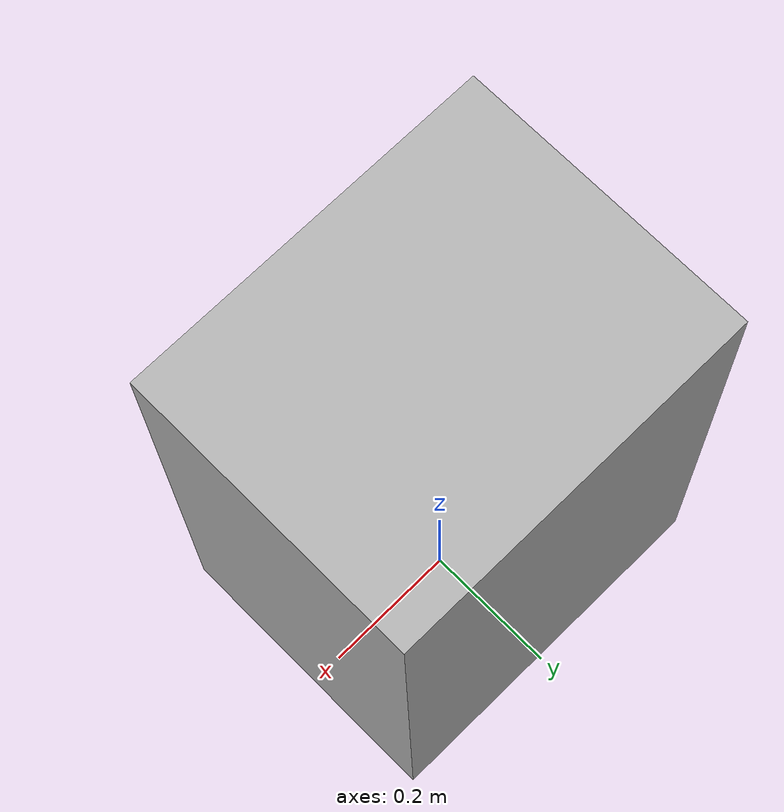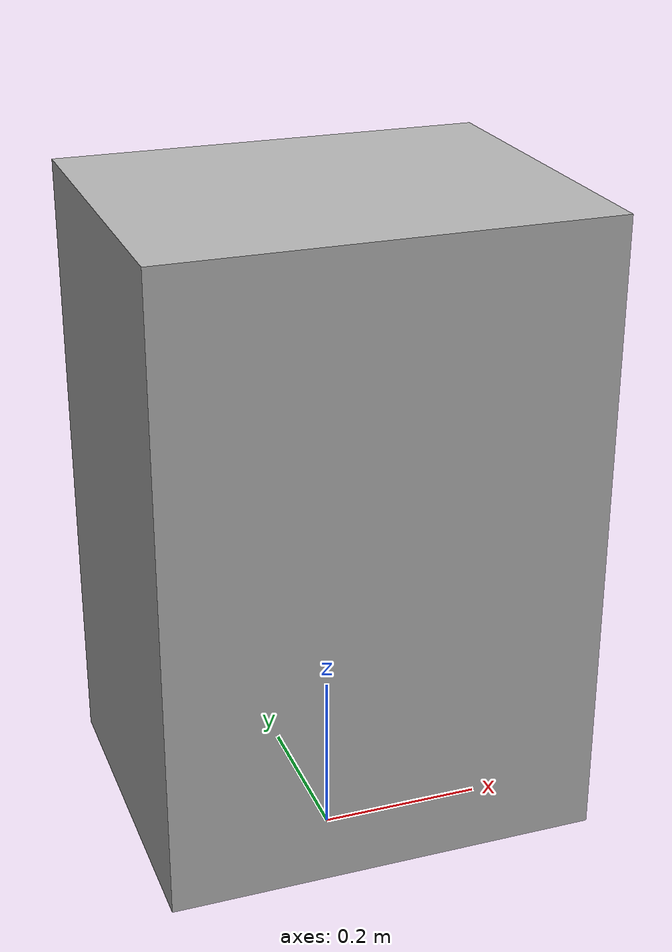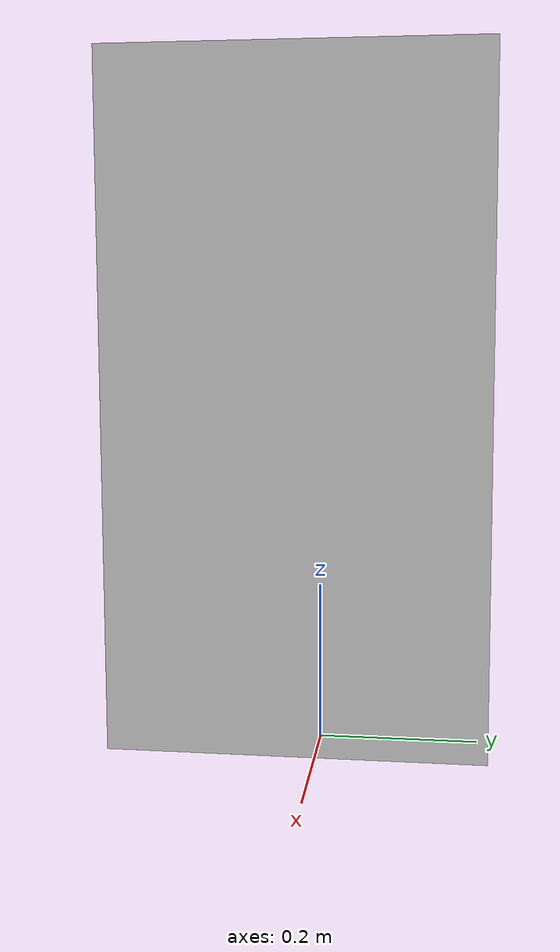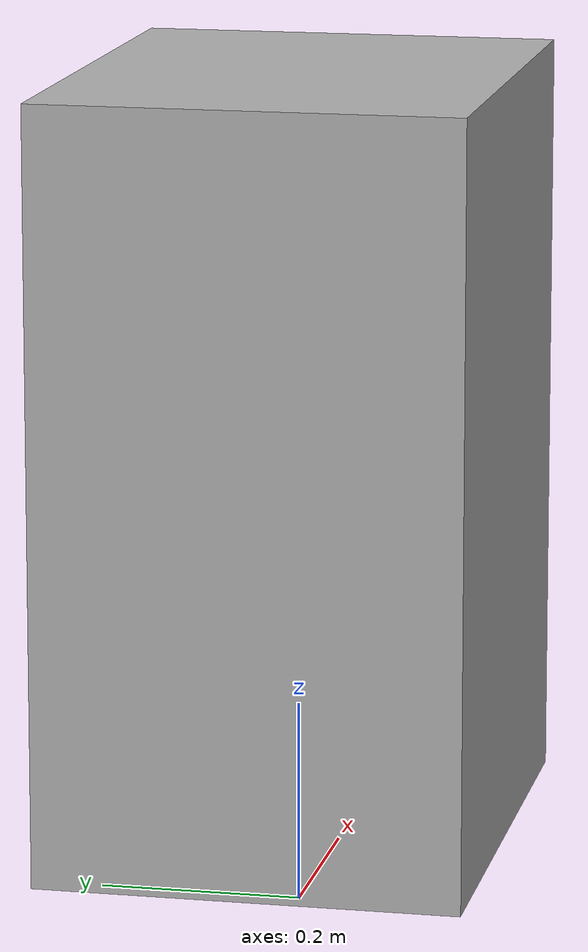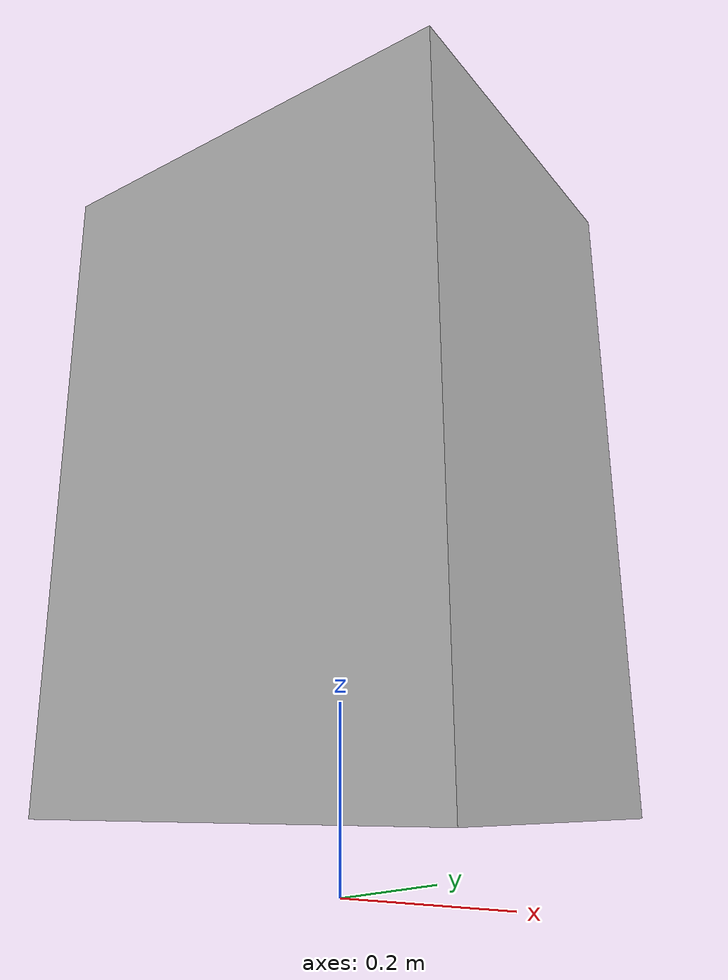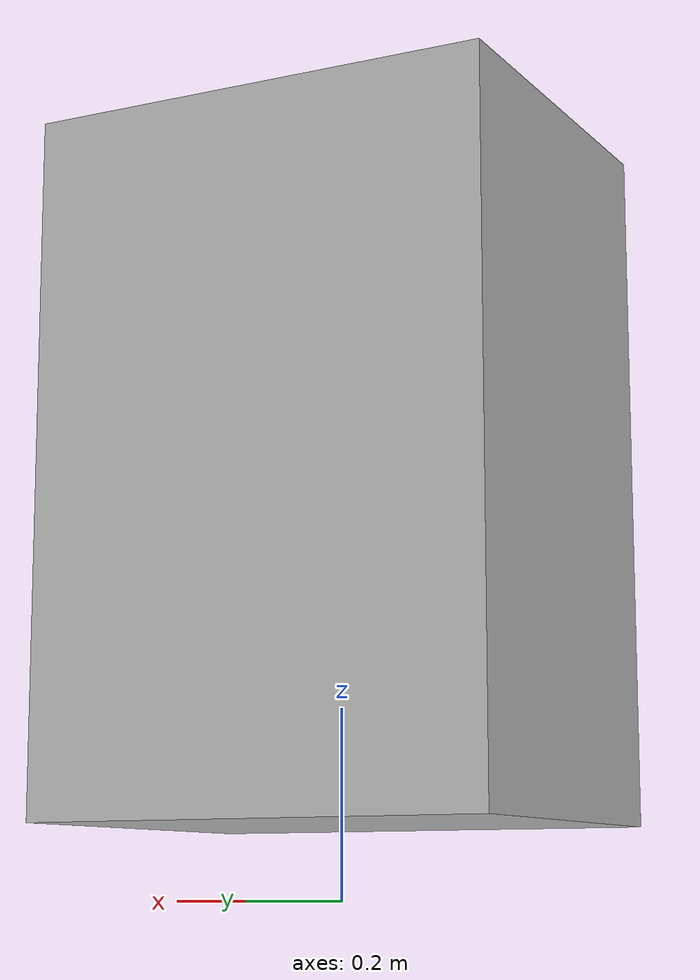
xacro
<?xml version="1.0"?>
<robot xmlns:xacro="http://www.ros.org/wiki/xacro" name="patrol_robot_vertical">

  <xacro:arg name="lidar_mount_roll_rad" default="-1.5707963268"/>
  <xacro:arg name="lidar_mount_pitch_rad" default="-0.0383972435"/>
  <xacro:arg name="lidar_mount_yaw_rad" default="1.5707963268"/>

  <!-- Conservative measured outer envelope, including protruding hardware. -->
  <xacro:property name="base_length" value="0.510"/>
  <xacro:property name="base_width" value="0.410"/>
  <xacro:property name="base_box_height" value="0.745"/>
  <xacro:property name="base_ground_clearance" value="0.0785"/>

  <xacro:property name="lidar_offset_x" value="0.190"/>
  <xacro:property name="lidar_offset_y" value="0.000"/>
  <xacro:property name="lidar_offset_z" value="0.550"/>

  <!-- Mechanical mounting frame fixed to the chassis. The yaw is operator
       calibrated from the Ubuntu console and stored in the Orin allowlist. -->
  <xacro:property name="lidar_mount_rpy" value="$(arg lidar_mount_roll_rad) $(arg lidar_mount_pitch_rad) $(arg lidar_mount_yaw_rad)"/>

  <!-- Verified Unitree driver-frame correction: roll=pi, yaw=115.234 deg. -->
  <xacro:property name="lidar_driver_rpy" value="3.14159 0.0 2.0112063268"/>

  <!-- Unitree factory IMU origin expressed in the LiDAR frame. Axes are parallel. -->
  <xacro:property name="imu_offset_x" value="-0.007698"/>
  <xacro:property name="imu_offset_y" value="-0.014655"/>
  <xacro:property name="imu_offset_z" value="0.00667"/>

  <link name="base_footprint"/>

  <joint name="base_joint" type="fixed">
    <parent link="base_footprint"/>
    <child link="base_link"/>
    <origin xyz="0 0 ${base_ground_clearance}" rpy="0 0 0"/>
  </joint>

  <link name="base_link">
    <visual>
      <geometry>
        <box size="${base_length} ${base_width} ${base_box_height}"/>
      </geometry>
      <origin xyz="0 0 ${base_box_height/2}" rpy="0 0 0"/>
      <material name="light_grey"><color rgba="0.7 0.7 0.7 1"/></material>
    </visual>
  </link>

  <link name="unilidar_link">
    <visual>
      <geometry>
        <cylinder length="0.06" radius="0.04"/>
      </geometry>
      <material name="black"><color rgba="0.1 0.1 0.1 1"/></material>
    </visual>
  </link>

  <joint name="unilidar_joint" type="fixed">
    <parent link="base_link"/>
    <child link="unilidar_link"/>
    <origin
      xyz="${lidar_offset_x} ${lidar_offset_y} ${lidar_offset_z}"
      rpy="${lidar_mount_rpy}"/>
  </joint>

  <!-- Driver-published PointCloud2 frame. This is the single TF authority. -->
  <link name="unilidar_lidar"/>

  <joint name="unilidar_lidar_joint" type="fixed">
    <parent link="unilidar_link"/>
    <child link="unilidar_lidar"/>
    <origin xyz="0 0 0" rpy="${lidar_driver_rpy}"/>
  </joint>

  <!-- Driver-published IMU frame, parallel to the LiDAR axes per Unitree. -->
  <link name="unilidar_imu"/>

  <joint name="unilidar_imu_joint" type="fixed">
    <parent link="unilidar_lidar"/>
    <child link="unilidar_imu"/>
    <origin
      xyz="${imu_offset_x} ${imu_offset_y} ${imu_offset_z}"
      rpy="0 0 0"/>
  </joint>

</robot>
